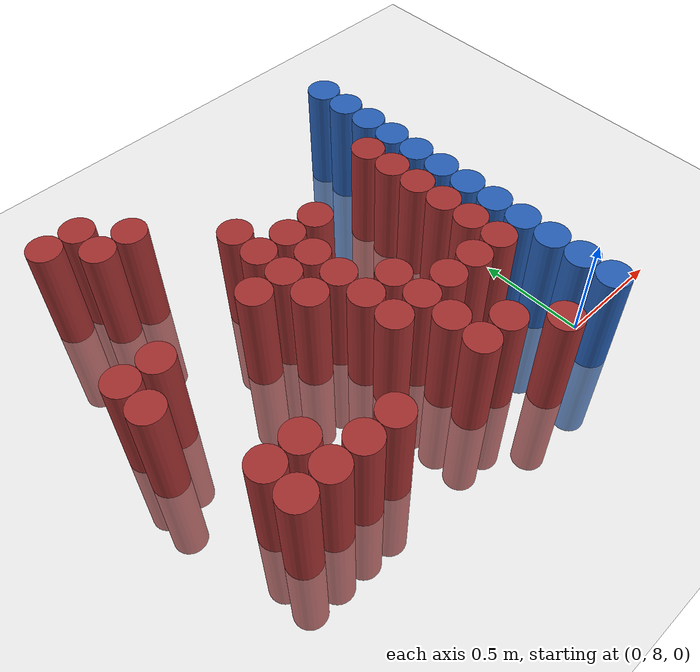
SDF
<sdf version="1.6">
 <world name="default">
  <model name="ground_plane">
   <static>1</static>
   <link name="link">
    <collision name="collision">
     <geometry><plane><normal>0 0 1</normal><size>100 100</size></plane></geometry>
     <surface><friction><ode><mu>100</mu><mu2>50</mu2></ode></friction></surface>
    </collision>
    <visual name="visual">
     <cast_shadows>0</cast_shadows>
     <geometry><plane><normal>0 0 1</normal><size>100 100</size></plane></geometry>
     <material>
      <script><uri>file://media/materials/scripts/gazebo.material</uri><name>Gazebo/Grey</name></script>
     </material>
    </visual>
   </link>
  </model>
  <model name="unit_cylinder_225">
   <static>1</static>
   <pose>-1.725000 8.625000 0.000000 0.000000 0.000000 0.000000</pose>
   <link name="link">
    <inertial>
     <mass>1</mass>
     <inertia><ixx>0.145833</ixx><ixy>0</ixy><ixz>0</ixz><iyy>0.145833</iyy><iyz>0</iyz><izz>0.125</izz></inertia>
    </inertial>
    <collision name="collision">
     <geometry><cylinder><radius>0.075000</radius><length>1</length></cylinder></geometry>
    </collision>
    <visual name="visual">
     <geometry><cylinder><radius>0.075000</radius><length>1</length></cylinder></geometry>
     <material>
      <ambient>0.648000 0.192000 0.192000 1</ambient>
      <diffuse>0.648000 0.192000 0.192000 1</diffuse>
     </material>
     <material>
      <script><name>Gazebo/Grey</name><uri>file://media/materials/scripts/gazebo.material</uri></script>
     </material>
    </visual>
   </link>
  </model>
  <model name="unit_cylinder_226">
   <static>1</static>
   <pose>-1.725000 8.775000 0.000000 0.000000 0.000000 0.000000</pose>
   <link name="link">
    <inertial>
     <mass>1</mass>
     <inertia><ixx>0.145833</ixx><ixy>0</ixy><ixz>0</ixz><iyy>0.145833</iyy><iyz>0</iyz><izz>0.125</izz></inertia>
    </inertial>
    <collision name="collision">
     <geometry><cylinder><radius>0.075000</radius><length>1</length></cylinder></geometry>
    </collision>
    <visual name="visual">
     <geometry><cylinder><radius>0.075000</radius><length>1</length></cylinder></geometry>
     <material>
      <ambient>0.648000 0.192000 0.192000 1</ambient>
      <diffuse>0.648000 0.192000 0.192000 1</diffuse>
     </material>
     <material>
      <script><name>Gazebo/Grey</name><uri>file://media/materials/scripts/gazebo.material</uri></script>
     </material>
    </visual>
   </link>
  </model>
  <model name="unit_cylinder_230">
   <static>1</static>
   <pose>-1.575000 8.025000 0.000000 0.000000 0.000000 0.000000</pose>
   <link name="link">
    <inertial>
     <mass>1</mass>
     <inertia><ixx>0.145833</ixx><ixy>0</ixy><ixz>0</ixz><iyy>0.145833</iyy><iyz>0</iyz><izz>0.125</izz></inertia>
    </inertial>
    <collision name="collision">
     <geometry><cylinder><radius>0.075000</radius><length>1</length></cylinder></geometry>
    </collision>
    <visual name="visual">
     <geometry><cylinder><radius>0.075000</radius><length>1</length></cylinder></geometry>
     <material>
      <ambient>0.648000 0.192000 0.192000 1</ambient>
      <diffuse>0.648000 0.192000 0.192000 1</diffuse>
     </material>
     <material>
      <script><name>Gazebo/Grey</name><uri>file://media/materials/scripts/gazebo.material</uri></script>
     </material>
    </visual>
   </link>
  </model>
  <model name="unit_cylinder_231">
   <static>1</static>
   <pose>-1.575000 8.175000 0.000000 0.000000 0.000000 0.000000</pose>
   <link name="link">
    <inertial>
     <mass>1</mass>
     <inertia><ixx>0.145833</ixx><ixy>0</ixy><ixz>0</ixz><iyy>0.145833</iyy><iyz>0</iyz><izz>0.125</izz></inertia>
    </inertial>
    <collision name="collision">
     <geometry><cylinder><radius>0.075000</radius><length>1</length></cylinder></geometry>
    </collision>
    <visual name="visual">
     <geometry><cylinder><radius>0.075000</radius><length>1</length></cylinder></geometry>
     <material>
      <ambient>0.648000 0.192000 0.192000 1</ambient>
      <diffuse>0.648000 0.192000 0.192000 1</diffuse>
     </material>
     <material>
      <script><name>Gazebo/Grey</name><uri>file://media/materials/scripts/gazebo.material</uri></script>
     </material>
    </visual>
   </link>
  </model>
  <model name="unit_cylinder_232">
   <static>1</static>
   <pose>-1.575000 8.775000 0.000000 0.000000 0.000000 0.000000</pose>
   <link name="link">
    <inertial>
     <mass>1</mass>
     <inertia><ixx>0.145833</ixx><ixy>0</ixy><ixz>0</ixz><iyy>0.145833</iyy><iyz>0</iyz><izz>0.125</izz></inertia>
    </inertial>
    <collision name="collision">
     <geometry><cylinder><radius>0.075000</radius><length>1</length></cylinder></geometry>
    </collision>
    <visual name="visual">
     <geometry><cylinder><radius>0.075000</radius><length>1</length></cylinder></geometry>
     <material>
      <ambient>0.648000 0.192000 0.192000 1</ambient>
      <diffuse>0.648000 0.192000 0.192000 1</diffuse>
     </material>
     <material>
      <script><name>Gazebo/Grey</name><uri>file://media/materials/scripts/gazebo.material</uri></script>
     </material>
    </visual>
   </link>
  </model>
  <model name="unit_cylinder_233">
   <static>1</static>
   <pose>-1.575000 9.525000 0.000000 0.000000 0.000000 0.000000</pose>
   <link name="link">
    <inertial>
     <mass>1</mass>
     <inertia><ixx>0.145833</ixx><ixy>0</ixy><ixz>0</ixz><iyy>0.145833</iyy><iyz>0</iyz><izz>0.125</izz></inertia>
    </inertial>
    <collision name="collision">
     <geometry><cylinder><radius>0.075000</radius><length>1</length></cylinder></geometry>
    </collision>
    <visual name="visual">
     <geometry><cylinder><radius>0.075000</radius><length>1</length></cylinder></geometry>
     <material>
      <ambient>0.648000 0.192000 0.192000 1</ambient>
      <diffuse>0.648000 0.192000 0.192000 1</diffuse>
     </material>
     <material>
      <script><name>Gazebo/Grey</name><uri>file://media/materials/scripts/gazebo.material</uri></script>
     </material>
    </visual>
   </link>
  </model>
  <model name="unit_cylinder_240">
   <static>1</static>
   <pose>-1.425000 8.025000 0.000000 0.000000 0.000000 0.000000</pose>
   <link name="link">
    <inertial>
     <mass>1</mass>
     <inertia><ixx>0.145833</ixx><ixy>0</ixy><ixz>0</ixz><iyy>0.145833</iyy><iyz>0</iyz><izz>0.125</izz></inertia>
    </inertial>
    <collision name="collision">
     <geometry><cylinder><radius>0.075000</radius><length>1</length></cylinder></geometry>
    </collision>
    <visual name="visual">
     <geometry><cylinder><radius>0.075000</radius><length>1</length></cylinder></geometry>
     <material>
      <ambient>0.648000 0.192000 0.192000 1</ambient>
      <diffuse>0.648000 0.192000 0.192000 1</diffuse>
     </material>
     <material>
      <script><name>Gazebo/Grey</name><uri>file://media/materials/scripts/gazebo.material</uri></script>
     </material>
    </visual>
   </link>
  </model>
  <model name="unit_cylinder_241">
   <static>1</static>
   <pose>-1.425000 8.175000 0.000000 0.000000 0.000000 0.000000</pose>
   <link name="link">
    <inertial>
     <mass>1</mass>
     <inertia><ixx>0.145833</ixx><ixy>0</ixy><ixz>0</ixz><iyy>0.145833</iyy><iyz>0</iyz><izz>0.125</izz></inertia>
    </inertial>
    <collision name="collision">
     <geometry><cylinder><radius>0.075000</radius><length>1</length></cylinder></geometry>
    </collision>
    <visual name="visual">
     <geometry><cylinder><radius>0.075000</radius><length>1</length></cylinder></geometry>
     <material>
      <ambient>0.648000 0.192000 0.192000 1</ambient>
      <diffuse>0.648000 0.192000 0.192000 1</diffuse>
     </material>
     <material>
      <script><name>Gazebo/Grey</name><uri>file://media/materials/scripts/gazebo.material</uri></script>
     </material>
    </visual>
   </link>
  </model>
  <model name="unit_cylinder_242">
   <static>1</static>
   <pose>-1.425000 9.375000 0.000000 0.000000 0.000000 0.000000</pose>
   <link name="link">
    <inertial>
     <mass>1</mass>
     <inertia><ixx>0.145833</ixx><ixy>0</ixy><ixz>0</ixz><iyy>0.145833</iyy><iyz>0</iyz><izz>0.125</izz></inertia>
    </inertial>
    <collision name="collision">
     <geometry><cylinder><radius>0.075000</radius><length>1</length></cylinder></geometry>
    </collision>
    <visual name="visual">
     <geometry><cylinder><radius>0.075000</radius><length>1</length></cylinder></geometry>
     <material>
      <ambient>0.648000 0.192000 0.192000 1</ambient>
      <diffuse>0.648000 0.192000 0.192000 1</diffuse>
     </material>
     <material>
      <script><name>Gazebo/Grey</name><uri>file://media/materials/scripts/gazebo.material</uri></script>
     </material>
    </visual>
   </link>
  </model>
  <model name="unit_cylinder_243">
   <static>1</static>
   <pose>-1.425000 9.525000 0.000000 0.000000 0.000000 0.000000</pose>
   <link name="link">
    <inertial>
     <mass>1</mass>
     <inertia><ixx>0.145833</ixx><ixy>0</ixy><ixz>0</ixz><iyy>0.145833</iyy><iyz>0</iyz><izz>0.125</izz></inertia>
    </inertial>
    <collision name="collision">
     <geometry><cylinder><radius>0.075000</radius><length>1</length></cylinder></geometry>
    </collision>
    <visual name="visual">
     <geometry><cylinder><radius>0.075000</radius><length>1</length></cylinder></geometry>
     <material>
      <ambient>0.648000 0.192000 0.192000 1</ambient>
      <diffuse>0.648000 0.192000 0.192000 1</diffuse>
     </material>
     <material>
      <script><name>Gazebo/Grey</name><uri>file://media/materials/scripts/gazebo.material</uri></script>
     </material>
    </visual>
   </link>
  </model>
  <model name="unit_cylinder_249">
   <static>1</static>
   <pose>-1.275000 8.025000 0.000000 0.000000 0.000000 0.000000</pose>
   <link name="link">
    <inertial>
     <mass>1</mass>
     <inertia><ixx>0.145833</ixx><ixy>0</ixy><ixz>0</ixz><iyy>0.145833</iyy><iyz>0</iyz><izz>0.125</izz></inertia>
    </inertial>
    <collision name="collision">
     <geometry><cylinder><radius>0.075000</radius><length>1</length></cylinder></geometry>
    </collision>
    <visual name="visual">
     <geometry><cylinder><radius>0.075000</radius><length>1</length></cylinder></geometry>
     <material>
      <ambient>0.648000 0.192000 0.192000 1</ambient>
      <diffuse>0.648000 0.192000 0.192000 1</diffuse>
     </material>
     <material>
      <script><name>Gazebo/Grey</name><uri>file://media/materials/scripts/gazebo.material</uri></script>
     </material>
    </visual>
   </link>
  </model>
  <model name="unit_cylinder_250">
   <static>1</static>
   <pose>-1.275000 9.375000 0.000000 0.000000 0.000000 0.000000</pose>
   <link name="link">
    <inertial>
     <mass>1</mass>
     <inertia><ixx>0.145833</ixx><ixy>0</ixy><ixz>0</ixz><iyy>0.145833</iyy><iyz>0</iyz><izz>0.125</izz></inertia>
    </inertial>
    <collision name="collision">
     <geometry><cylinder><radius>0.075000</radius><length>1</length></cylinder></geometry>
    </collision>
    <visual name="visual">
     <geometry><cylinder><radius>0.075000</radius><length>1</length></cylinder></geometry>
     <material>
      <ambient>0.648000 0.192000 0.192000 1</ambient>
      <diffuse>0.648000 0.192000 0.192000 1</diffuse>
     </material>
     <material>
      <script><name>Gazebo/Grey</name><uri>file://media/materials/scripts/gazebo.material</uri></script>
     </material>
    </visual>
   </link>
  </model>
  <model name="unit_cylinder_254">
   <static>1</static>
   <pose>-1.125000 8.025000 0.000000 0.000000 0.000000 0.000000</pose>
   <link name="link">
    <inertial>
     <mass>1</mass>
     <inertia><ixx>0.145833</ixx><ixy>0</ixy><ixz>0</ixz><iyy>0.145833</iyy><iyz>0</iyz><izz>0.125</izz></inertia>
    </inertial>
    <collision name="collision">
     <geometry><cylinder><radius>0.075000</radius><length>1</length></cylinder></geometry>
    </collision>
    <visual name="visual">
     <geometry><cylinder><radius>0.075000</radius><length>1</length></cylinder></geometry>
     <material>
      <ambient>0.648000 0.192000 0.192000 1</ambient>
      <diffuse>0.648000 0.192000 0.192000 1</diffuse>
     </material>
     <material>
      <script><name>Gazebo/Grey</name><uri>file://media/materials/scripts/gazebo.material</uri></script>
     </material>
    </visual>
   </link>
  </model>
  <model name="unit_cylinder_255">
   <static>1</static>
   <pose>-1.125000 8.775000 0.000000 0.000000 0.000000 0.000000</pose>
   <link name="link">
    <inertial>
     <mass>1</mass>
     <inertia><ixx>0.145833</ixx><ixy>0</ixy><ixz>0</ixz><iyy>0.145833</iyy><iyz>0</iyz><izz>0.125</izz></inertia>
    </inertial>
    <collision name="collision">
     <geometry><cylinder><radius>0.075000</radius><length>1</length></cylinder></geometry>
    </collision>
    <visual name="visual">
     <geometry><cylinder><radius>0.075000</radius><length>1</length></cylinder></geometry>
     <material>
      <ambient>0.648000 0.192000 0.192000 1</ambient>
      <diffuse>0.648000 0.192000 0.192000 1</diffuse>
     </material>
     <material>
      <script><name>Gazebo/Grey</name><uri>file://media/materials/scripts/gazebo.material</uri></script>
     </material>
    </visual>
   </link>
  </model>
  <model name="unit_cylinder_262">
   <static>1</static>
   <pose>-0.975000 8.625000 0.000000 0.000000 0.000000 0.000000</pose>
   <link name="link">
    <inertial>
     <mass>1</mass>
     <inertia><ixx>0.145833</ixx><ixy>0</ixy><ixz>0</ixz><iyy>0.145833</iyy><iyz>0</iyz><izz>0.125</izz></inertia>
    </inertial>
    <collision name="collision">
     <geometry><cylinder><radius>0.075000</radius><length>1</length></cylinder></geometry>
    </collision>
    <visual name="visual">
     <geometry><cylinder><radius>0.075000</radius><length>1</length></cylinder></geometry>
     <material>
      <ambient>0.648000 0.192000 0.192000 1</ambient>
      <diffuse>0.648000 0.192000 0.192000 1</diffuse>
     </material>
     <material>
      <script><name>Gazebo/Grey</name><uri>file://media/materials/scripts/gazebo.material</uri></script>
     </material>
    </visual>
   </link>
  </model>
  <model name="unit_cylinder_263">
   <static>1</static>
   <pose>-0.975000 8.775000 0.000000 0.000000 0.000000 0.000000</pose>
   <link name="link">
    <inertial>
     <mass>1</mass>
     <inertia><ixx>0.145833</ixx><ixy>0</ixy><ixz>0</ixz><iyy>0.145833</iyy><iyz>0</iyz><izz>0.125</izz></inertia>
    </inertial>
    <collision name="collision">
     <geometry><cylinder><radius>0.075000</radius><length>1</length></cylinder></geometry>
    </collision>
    <visual name="visual">
     <geometry><cylinder><radius>0.075000</radius><length>1</length></cylinder></geometry>
     <material>
      <ambient>0.648000 0.192000 0.192000 1</ambient>
      <diffuse>0.648000 0.192000 0.192000 1</diffuse>
     </material>
     <material>
      <script><name>Gazebo/Grey</name><uri>file://media/materials/scripts/gazebo.material</uri></script>
     </material>
    </visual>
   </link>
  </model>
  <model name="unit_cylinder_264">
   <static>1</static>
   <pose>-0.975000 8.925000 0.000000 0.000000 0.000000 0.000000</pose>
   <link name="link">
    <inertial>
     <mass>1</mass>
     <inertia><ixx>0.145833</ixx><ixy>0</ixy><ixz>0</ixz><iyy>0.145833</iyy><iyz>0</iyz><izz>0.125</izz></inertia>
    </inertial>
    <collision name="collision">
     <geometry><cylinder><radius>0.075000</radius><length>1</length></cylinder></geometry>
    </collision>
    <visual name="visual">
     <geometry><cylinder><radius>0.075000</radius><length>1</length></cylinder></geometry>
     <material>
      <ambient>0.648000 0.192000 0.192000 1</ambient>
      <diffuse>0.648000 0.192000 0.192000 1</diffuse>
     </material>
     <material>
      <script><name>Gazebo/Grey</name><uri>file://media/materials/scripts/gazebo.material</uri></script>
     </material>
    </visual>
   </link>
  </model>
  <model name="unit_cylinder_265">
   <static>1</static>
   <pose>-0.975000 9.075000 0.000000 0.000000 0.000000 0.000000</pose>
   <link name="link">
    <inertial>
     <mass>1</mass>
     <inertia><ixx>0.145833</ixx><ixy>0</ixy><ixz>0</ixz><iyy>0.145833</iyy><iyz>0</iyz><izz>0.125</izz></inertia>
    </inertial>
    <collision name="collision">
     <geometry><cylinder><radius>0.075000</radius><length>1</length></cylinder></geometry>
    </collision>
    <visual name="visual">
     <geometry><cylinder><radius>0.075000</radius><length>1</length></cylinder></geometry>
     <material>
      <ambient>0.648000 0.192000 0.192000 1</ambient>
      <diffuse>0.648000 0.192000 0.192000 1</diffuse>
     </material>
     <material>
      <script><name>Gazebo/Grey</name><uri>file://media/materials/scripts/gazebo.material</uri></script>
     </material>
    </visual>
   </link>
  </model>
  <model name="unit_cylinder_273">
   <static>1</static>
   <pose>-0.825000 8.325000 0.000000 0.000000 0.000000 0.000000</pose>
   <link name="link">
    <inertial>
     <mass>1</mass>
     <inertia><ixx>0.145833</ixx><ixy>0</ixy><ixz>0</ixz><iyy>0.145833</iyy><iyz>0</iyz><izz>0.125</izz></inertia>
    </inertial>
    <collision name="collision">
     <geometry><cylinder><radius>0.075000</radius><length>1</length></cylinder></geometry>
    </collision>
    <visual name="visual">
     <geometry><cylinder><radius>0.075000</radius><length>1</length></cylinder></geometry>
     <material>
      <ambient>0.648000 0.192000 0.192000 1</ambient>
      <diffuse>0.648000 0.192000 0.192000 1</diffuse>
     </material>
     <material>
      <script><name>Gazebo/Grey</name><uri>file://media/materials/scripts/gazebo.material</uri></script>
     </material>
    </visual>
   </link>
  </model>
  <model name="unit_cylinder_274">
   <static>1</static>
   <pose>-0.825000 8.475000 0.000000 0.000000 0.000000 0.000000</pose>
   <link name="link">
    <inertial>
     <mass>1</mass>
     <inertia><ixx>0.145833</ixx><ixy>0</ixy><ixz>0</ixz><iyy>0.145833</iyy><iyz>0</iyz><izz>0.125</izz></inertia>
    </inertial>
    <collision name="collision">
     <geometry><cylinder><radius>0.075000</radius><length>1</length></cylinder></geometry>
    </collision>
    <visual name="visual">
     <geometry><cylinder><radius>0.075000</radius><length>1</length></cylinder></geometry>
     <material>
      <ambient>0.648000 0.192000 0.192000 1</ambient>
      <diffuse>0.648000 0.192000 0.192000 1</diffuse>
     </material>
     <material>
      <script><name>Gazebo/Grey</name><uri>file://media/materials/scripts/gazebo.material</uri></script>
     </material>
    </visual>
   </link>
  </model>
  <model name="unit_cylinder_275">
   <static>1</static>
   <pose>-0.825000 8.625000 0.000000 0.000000 0.000000 0.000000</pose>
   <link name="link">
    <inertial>
     <mass>1</mass>
     <inertia><ixx>0.145833</ixx><ixy>0</ixy><ixz>0</ixz><iyy>0.145833</iyy><iyz>0</iyz><izz>0.125</izz></inertia>
    </inertial>
    <collision name="collision">
     <geometry><cylinder><radius>0.075000</radius><length>1</length></cylinder></geometry>
    </collision>
    <visual name="visual">
     <geometry><cylinder><radius>0.075000</radius><length>1</length></cylinder></geometry>
     <material>
      <ambient>0.648000 0.192000 0.192000 1</ambient>
      <diffuse>0.648000 0.192000 0.192000 1</diffuse>
     </material>
     <material>
      <script><name>Gazebo/Grey</name><uri>file://media/materials/scripts/gazebo.material</uri></script>
     </material>
    </visual>
   </link>
  </model>
  <model name="unit_cylinder_276">
   <static>1</static>
   <pose>-0.825000 8.775000 0.000000 0.000000 0.000000 0.000000</pose>
   <link name="link">
    <inertial>
     <mass>1</mass>
     <inertia><ixx>0.145833</ixx><ixy>0</ixy><ixz>0</ixz><iyy>0.145833</iyy><iyz>0</iyz><izz>0.125</izz></inertia>
    </inertial>
    <collision name="collision">
     <geometry><cylinder><radius>0.075000</radius><length>1</length></cylinder></geometry>
    </collision>
    <visual name="visual">
     <geometry><cylinder><radius>0.075000</radius><length>1</length></cylinder></geometry>
     <material>
      <ambient>0.648000 0.192000 0.192000 1</ambient>
      <diffuse>0.648000 0.192000 0.192000 1</diffuse>
     </material>
     <material>
      <script><name>Gazebo/Grey</name><uri>file://media/materials/scripts/gazebo.material</uri></script>
     </material>
    </visual>
   </link>
  </model>
  <model name="unit_cylinder_277">
   <static>1</static>
   <pose>-0.825000 8.925000 0.000000 0.000000 0.000000 0.000000</pose>
   <link name="link">
    <inertial>
     <mass>1</mass>
     <inertia><ixx>0.145833</ixx><ixy>0</ixy><ixz>0</ixz><iyy>0.145833</iyy><iyz>0</iyz><izz>0.125</izz></inertia>
    </inertial>
    <collision name="collision">
     <geometry><cylinder><radius>0.075000</radius><length>1</length></cylinder></geometry>
    </collision>
    <visual name="visual">
     <geometry><cylinder><radius>0.075000</radius><length>1</length></cylinder></geometry>
     <material>
      <ambient>0.648000 0.192000 0.192000 1</ambient>
      <diffuse>0.648000 0.192000 0.192000 1</diffuse>
     </material>
     <material>
      <script><name>Gazebo/Grey</name><uri>file://media/materials/scripts/gazebo.material</uri></script>
     </material>
    </visual>
   </link>
  </model>
  <model name="unit_cylinder_285">
   <static>1</static>
   <pose>-0.675000 8.025000 0.000000 0.000000 0.000000 0.000000</pose>
   <link name="link">
    <inertial>
     <mass>1</mass>
     <inertia><ixx>0.145833</ixx><ixy>0</ixy><ixz>0</ixz><iyy>0.145833</iyy><iyz>0</iyz><izz>0.125</izz></inertia>
    </inertial>
    <collision name="collision">
     <geometry><cylinder><radius>0.075000</radius><length>1</length></cylinder></geometry>
    </collision>
    <visual name="visual">
     <geometry><cylinder><radius>0.075000</radius><length>1</length></cylinder></geometry>
     <material>
      <ambient>0.648000 0.192000 0.192000 1</ambient>
      <diffuse>0.648000 0.192000 0.192000 1</diffuse>
     </material>
     <material>
      <script><name>Gazebo/Grey</name><uri>file://media/materials/scripts/gazebo.material</uri></script>
     </material>
    </visual>
   </link>
  </model>
  <model name="unit_cylinder_286">
   <static>1</static>
   <pose>-0.675000 8.175000 0.000000 0.000000 0.000000 0.000000</pose>
   <link name="link">
    <inertial>
     <mass>1</mass>
     <inertia><ixx>0.145833</ixx><ixy>0</ixy><ixz>0</ixz><iyy>0.145833</iyy><iyz>0</iyz><izz>0.125</izz></inertia>
    </inertial>
    <collision name="collision">
     <geometry><cylinder><radius>0.075000</radius><length>1</length></cylinder></geometry>
    </collision>
    <visual name="visual">
     <geometry><cylinder><radius>0.075000</radius><length>1</length></cylinder></geometry>
     <material>
      <ambient>0.648000 0.192000 0.192000 1</ambient>
      <diffuse>0.648000 0.192000 0.192000 1</diffuse>
     </material>
     <material>
      <script><name>Gazebo/Grey</name><uri>file://media/materials/scripts/gazebo.material</uri></script>
     </material>
    </visual>
   </link>
  </model>
  <model name="unit_cylinder_287">
   <static>1</static>
   <pose>-0.675000 8.325000 0.000000 0.000000 0.000000 0.000000</pose>
   <link name="link">
    <inertial>
     <mass>1</mass>
     <inertia><ixx>0.145833</ixx><ixy>0</ixy><ixz>0</ixz><iyy>0.145833</iyy><iyz>0</iyz><izz>0.125</izz></inertia>
    </inertial>
    <collision name="collision">
     <geometry><cylinder><radius>0.075000</radius><length>1</length></cylinder></geometry>
    </collision>
    <visual name="visual">
     <geometry><cylinder><radius>0.075000</radius><length>1</length></cylinder></geometry>
     <material>
      <ambient>0.648000 0.192000 0.192000 1</ambient>
      <diffuse>0.648000 0.192000 0.192000 1</diffuse>
     </material>
     <material>
      <script><name>Gazebo/Grey</name><uri>file://media/materials/scripts/gazebo.material</uri></script>
     </material>
    </visual>
   </link>
  </model>
  <model name="unit_cylinder_288">
   <static>1</static>
   <pose>-0.675000 8.475000 0.000000 0.000000 0.000000 0.000000</pose>
   <link name="link">
    <inertial>
     <mass>1</mass>
     <inertia><ixx>0.145833</ixx><ixy>0</ixy><ixz>0</ixz><iyy>0.145833</iyy><iyz>0</iyz><izz>0.125</izz></inertia>
    </inertial>
    <collision name="collision">
     <geometry><cylinder><radius>0.075000</radius><length>1</length></cylinder></geometry>
    </collision>
    <visual name="visual">
     <geometry><cylinder><radius>0.075000</radius><length>1</length></cylinder></geometry>
     <material>
      <ambient>0.648000 0.192000 0.192000 1</ambient>
      <diffuse>0.648000 0.192000 0.192000 1</diffuse>
     </material>
     <material>
      <script><name>Gazebo/Grey</name><uri>file://media/materials/scripts/gazebo.material</uri></script>
     </material>
    </visual>
   </link>
  </model>
  <model name="unit_cylinder_289">
   <static>1</static>
   <pose>-0.675000 8.925000 0.000000 0.000000 0.000000 0.000000</pose>
   <link name="link">
    <inertial>
     <mass>1</mass>
     <inertia><ixx>0.145833</ixx><ixy>0</ixy><ixz>0</ixz><iyy>0.145833</iyy><iyz>0</iyz><izz>0.125</izz></inertia>
    </inertial>
    <collision name="collision">
     <geometry><cylinder><radius>0.075000</radius><length>1</length></cylinder></geometry>
    </collision>
    <visual name="visual">
     <geometry><cylinder><radius>0.075000</radius><length>1</length></cylinder></geometry>
     <material>
      <ambient>0.648000 0.192000 0.192000 1</ambient>
      <diffuse>0.648000 0.192000 0.192000 1</diffuse>
     </material>
     <material>
      <script><name>Gazebo/Grey</name><uri>file://media/materials/scripts/gazebo.material</uri></script>
     </material>
    </visual>
   </link>
  </model>
  <model name="unit_cylinder_295">
   <static>1</static>
   <pose>-0.525000 8.025000 0.000000 0.000000 0.000000 0.000000</pose>
   <link name="link">
    <inertial>
     <mass>1</mass>
     <inertia><ixx>0.145833</ixx><ixy>0</ixy><ixz>0</ixz><iyy>0.145833</iyy><iyz>0</iyz><izz>0.125</izz></inertia>
    </inertial>
    <collision name="collision">
     <geometry><cylinder><radius>0.075000</radius><length>1</length></cylinder></geometry>
    </collision>
    <visual name="visual">
     <geometry><cylinder><radius>0.075000</radius><length>1</length></cylinder></geometry>
     <material>
      <ambient>0.648000 0.192000 0.192000 1</ambient>
      <diffuse>0.648000 0.192000 0.192000 1</diffuse>
     </material>
     <material>
      <script><name>Gazebo/Grey</name><uri>file://media/materials/scripts/gazebo.material</uri></script>
     </material>
    </visual>
   </link>
  </model>
  <model name="unit_cylinder_296">
   <static>1</static>
   <pose>-0.525000 8.325000 0.000000 0.000000 0.000000 0.000000</pose>
   <link name="link">
    <inertial>
     <mass>1</mass>
     <inertia><ixx>0.145833</ixx><ixy>0</ixy><ixz>0</ixz><iyy>0.145833</iyy><iyz>0</iyz><izz>0.125</izz></inertia>
    </inertial>
    <collision name="collision">
     <geometry><cylinder><radius>0.075000</radius><length>1</length></cylinder></geometry>
    </collision>
    <visual name="visual">
     <geometry><cylinder><radius>0.075000</radius><length>1</length></cylinder></geometry>
     <material>
      <ambient>0.648000 0.192000 0.192000 1</ambient>
      <diffuse>0.648000 0.192000 0.192000 1</diffuse>
     </material>
     <material>
      <script><name>Gazebo/Grey</name><uri>file://media/materials/scripts/gazebo.material</uri></script>
     </material>
    </visual>
   </link>
  </model>
  <model name="unit_cylinder_301">
   <static>1</static>
   <pose>-0.375000 7.875000 0.000000 0.000000 0.000000 0.000000</pose>
   <link name="link">
    <inertial>
     <mass>1</mass>
     <inertia><ixx>0.145833</ixx><ixy>0</ixy><ixz>0</ixz><iyy>0.145833</iyy><iyz>0</iyz><izz>0.125</izz></inertia>
    </inertial>
    <collision name="collision">
     <geometry><cylinder><radius>0.075000</radius><length>1</length></cylinder></geometry>
    </collision>
    <visual name="visual">
     <geometry><cylinder><radius>0.075000</radius><length>1</length></cylinder></geometry>
     <material>
      <ambient>0.648000 0.192000 0.192000 1</ambient>
      <diffuse>0.648000 0.192000 0.192000 1</diffuse>
     </material>
     <material>
      <script><name>Gazebo/Grey</name><uri>file://media/materials/scripts/gazebo.material</uri></script>
     </material>
    </visual>
   </link>
  </model>
  <model name="unit_cylinder_302">
   <static>1</static>
   <pose>-0.375000 8.325000 0.000000 0.000000 0.000000 0.000000</pose>
   <link name="link">
    <inertial>
     <mass>1</mass>
     <inertia><ixx>0.145833</ixx><ixy>0</ixy><ixz>0</ixz><iyy>0.145833</iyy><iyz>0</iyz><izz>0.125</izz></inertia>
    </inertial>
    <collision name="collision">
     <geometry><cylinder><radius>0.075000</radius><length>1</length></cylinder></geometry>
    </collision>
    <visual name="visual">
     <geometry><cylinder><radius>0.075000</radius><length>1</length></cylinder></geometry>
     <material>
      <ambient>0.648000 0.192000 0.192000 1</ambient>
      <diffuse>0.648000 0.192000 0.192000 1</diffuse>
     </material>
     <material>
      <script><name>Gazebo/Grey</name><uri>file://media/materials/scripts/gazebo.material</uri></script>
     </material>
    </visual>
   </link>
  </model>
  <model name="unit_cylinder_311">
   <static>1</static>
   <pose>-0.225000 8.325000 0.000000 0.000000 0.000000 0.000000</pose>
   <link name="link">
    <inertial>
     <mass>1</mass>
     <inertia><ixx>0.145833</ixx><ixy>0</ixy><ixz>0</ixz><iyy>0.145833</iyy><iyz>0</iyz><izz>0.125</izz></inertia>
    </inertial>
    <collision name="collision">
     <geometry><cylinder><radius>0.075000</radius><length>1</length></cylinder></geometry>
    </collision>
    <visual name="visual">
     <geometry><cylinder><radius>0.075000</radius><length>1</length></cylinder></geometry>
     <material>
      <ambient>0.648000 0.192000 0.192000 1</ambient>
      <diffuse>0.648000 0.192000 0.192000 1</diffuse>
     </material>
     <material>
      <script><name>Gazebo/Grey</name><uri>file://media/materials/scripts/gazebo.material</uri></script>
     </material>
    </visual>
   </link>
  </model>
  <model name="unit_cylinder_312">
   <static>1</static>
   <pose>-0.225000 8.475000 0.000000 0.000000 0.000000 0.000000</pose>
   <link name="link">
    <inertial>
     <mass>1</mass>
     <inertia><ixx>0.145833</ixx><ixy>0</ixy><ixz>0</ixz><iyy>0.145833</iyy><iyz>0</iyz><izz>0.125</izz></inertia>
    </inertial>
    <collision name="collision">
     <geometry><cylinder><radius>0.075000</radius><length>1</length></cylinder></geometry>
    </collision>
    <visual name="visual">
     <geometry><cylinder><radius>0.075000</radius><length>1</length></cylinder></geometry>
     <material>
      <ambient>0.648000 0.192000 0.192000 1</ambient>
      <diffuse>0.648000 0.192000 0.192000 1</diffuse>
     </material>
     <material>
      <script><name>Gazebo/Grey</name><uri>file://media/materials/scripts/gazebo.material</uri></script>
     </material>
    </visual>
   </link>
  </model>
  <model name="unit_cylinder_313">
   <static>1</static>
   <pose>-0.225000 8.625000 0.000000 0.000000 0.000000 0.000000</pose>
   <link name="link">
    <inertial>
     <mass>1</mass>
     <inertia><ixx>0.145833</ixx><ixy>0</ixy><ixz>0</ixz><iyy>0.145833</iyy><iyz>0</iyz><izz>0.125</izz></inertia>
    </inertial>
    <collision name="collision">
     <geometry><cylinder><radius>0.075000</radius><length>1</length></cylinder></geometry>
    </collision>
    <visual name="visual">
     <geometry><cylinder><radius>0.075000</radius><length>1</length></cylinder></geometry>
     <material>
      <ambient>0.648000 0.192000 0.192000 1</ambient>
      <diffuse>0.648000 0.192000 0.192000 1</diffuse>
     </material>
     <material>
      <script><name>Gazebo/Grey</name><uri>file://media/materials/scripts/gazebo.material</uri></script>
     </material>
    </visual>
   </link>
  </model>
  <model name="unit_cylinder_314">
   <static>1</static>
   <pose>-0.225000 8.775000 0.000000 0.000000 0.000000 0.000000</pose>
   <link name="link">
    <inertial>
     <mass>1</mass>
     <inertia><ixx>0.145833</ixx><ixy>0</ixy><ixz>0</ixz><iyy>0.145833</iyy><iyz>0</iyz><izz>0.125</izz></inertia>
    </inertial>
    <collision name="collision">
     <geometry><cylinder><radius>0.075000</radius><length>1</length></cylinder></geometry>
    </collision>
    <visual name="visual">
     <geometry><cylinder><radius>0.075000</radius><length>1</length></cylinder></geometry>
     <material>
      <ambient>0.648000 0.192000 0.192000 1</ambient>
      <diffuse>0.648000 0.192000 0.192000 1</diffuse>
     </material>
     <material>
      <script><name>Gazebo/Grey</name><uri>file://media/materials/scripts/gazebo.material</uri></script>
     </material>
    </visual>
   </link>
  </model>
  <model name="unit_cylinder_315">
   <static>1</static>
   <pose>-0.225000 8.925000 0.000000 0.000000 0.000000 0.000000</pose>
   <link name="link">
    <inertial>
     <mass>1</mass>
     <inertia><ixx>0.145833</ixx><ixy>0</ixy><ixz>0</ixz><iyy>0.145833</iyy><iyz>0</iyz><izz>0.125</izz></inertia>
    </inertial>
    <collision name="collision">
     <geometry><cylinder><radius>0.075000</radius><length>1</length></cylinder></geometry>
    </collision>
    <visual name="visual">
     <geometry><cylinder><radius>0.075000</radius><length>1</length></cylinder></geometry>
     <material>
      <ambient>0.648000 0.192000 0.192000 1</ambient>
      <diffuse>0.648000 0.192000 0.192000 1</diffuse>
     </material>
     <material>
      <script><name>Gazebo/Grey</name><uri>file://media/materials/scripts/gazebo.material</uri></script>
     </material>
    </visual>
   </link>
  </model>
  <model name="unit_cylinder_316">
   <static>1</static>
   <pose>-0.225000 9.075000 0.000000 0.000000 0.000000 0.000000</pose>
   <link name="link">
    <inertial>
     <mass>1</mass>
     <inertia><ixx>0.145833</ixx><ixy>0</ixy><ixz>0</ixz><iyy>0.145833</iyy><iyz>0</iyz><izz>0.125</izz></inertia>
    </inertial>
    <collision name="collision">
     <geometry><cylinder><radius>0.075000</radius><length>1</length></cylinder></geometry>
    </collision>
    <visual name="visual">
     <geometry><cylinder><radius>0.075000</radius><length>1</length></cylinder></geometry>
     <material>
      <ambient>0.648000 0.192000 0.192000 1</ambient>
      <diffuse>0.648000 0.192000 0.192000 1</diffuse>
     </material>
     <material>
      <script><name>Gazebo/Grey</name><uri>file://media/materials/scripts/gazebo.material</uri></script>
     </material>
    </visual>
   </link>
  </model>
  <model name="unit_cylinder_335">
   <static>1</static>
   <pose>-0.075000 7.875000 0.000000 0.000000 0.000000 0.000000</pose>
   <link name="link">
    <inertial>
     <mass>1</mass>
     <inertia><ixx>0.145833</ixx><ixy>0</ixy><ixz>0</ixz><iyy>0.145833</iyy><iyz>0</iyz><izz>0.125</izz></inertia>
    </inertial>
    <collision name="collision">
     <geometry><cylinder><radius>0.075000</radius><length>1</length></cylinder></geometry>
    </collision>
    <visual name="visual">
     <geometry><cylinder><radius>0.075000</radius><length>1</length></cylinder></geometry>
     <material>
      <ambient>0.152000 0.379000 0.720000 1</ambient>
      <diffuse>0.152000 0.379000 0.720000 1</diffuse>
     </material>
     <material>
      <script><name>Gazebo/Grey</name><uri>file://media/materials/scripts/gazebo.material</uri></script>
     </material>
    </visual>
   </link>
  </model>
  <model name="unit_cylinder_336">
   <static>1</static>
   <pose>-0.075000 8.025000 0.000000 0.000000 0.000000 0.000000</pose>
   <link name="link">
    <inertial>
     <mass>1</mass>
     <inertia><ixx>0.145833</ixx><ixy>0</ixy><ixz>0</ixz><iyy>0.145833</iyy><iyz>0</iyz><izz>0.125</izz></inertia>
    </inertial>
    <collision name="collision">
     <geometry><cylinder><radius>0.075000</radius><length>1</length></cylinder></geometry>
    </collision>
    <visual name="visual">
     <geometry><cylinder><radius>0.075000</radius><length>1</length></cylinder></geometry>
     <material>
      <ambient>0.152000 0.379000 0.720000 1</ambient>
      <diffuse>0.152000 0.379000 0.720000 1</diffuse>
     </material>
     <material>
      <script><name>Gazebo/Grey</name><uri>file://media/materials/scripts/gazebo.material</uri></script>
     </material>
    </visual>
   </link>
  </model>
  <model name="unit_cylinder_337">
   <static>1</static>
   <pose>-0.075000 8.175000 0.000000 0.000000 0.000000 0.000000</pose>
   <link name="link">
    <inertial>
     <mass>1</mass>
     <inertia><ixx>0.145833</ixx><ixy>0</ixy><ixz>0</ixz><iyy>0.145833</iyy><iyz>0</iyz><izz>0.125</izz></inertia>
    </inertial>
    <collision name="collision">
     <geometry><cylinder><radius>0.075000</radius><length>1</length></cylinder></geometry>
    </collision>
    <visual name="visual">
     <geometry><cylinder><radius>0.075000</radius><length>1</length></cylinder></geometry>
     <material>
      <ambient>0.152000 0.379000 0.720000 1</ambient>
      <diffuse>0.152000 0.379000 0.720000 1</diffuse>
     </material>
     <material>
      <script><name>Gazebo/Grey</name><uri>file://media/materials/scripts/gazebo.material</uri></script>
     </material>
    </visual>
   </link>
  </model>
  <model name="unit_cylinder_338">
   <static>1</static>
   <pose>-0.075000 8.325000 0.000000 0.000000 0.000000 0.000000</pose>
   <link name="link">
    <inertial>
     <mass>1</mass>
     <inertia><ixx>0.145833</ixx><ixy>0</ixy><ixz>0</ixz><iyy>0.145833</iyy><iyz>0</iyz><izz>0.125</izz></inertia>
    </inertial>
    <collision name="collision">
     <geometry><cylinder><radius>0.075000</radius><length>1</length></cylinder></geometry>
    </collision>
    <visual name="visual">
     <geometry><cylinder><radius>0.075000</radius><length>1</length></cylinder></geometry>
     <material>
      <ambient>0.152000 0.379000 0.720000 1</ambient>
      <diffuse>0.152000 0.379000 0.720000 1</diffuse>
     </material>
     <material>
      <script><name>Gazebo/Grey</name><uri>file://media/materials/scripts/gazebo.material</uri></script>
     </material>
    </visual>
   </link>
  </model>
  <model name="unit_cylinder_339">
   <static>1</static>
   <pose>-0.075000 8.475000 0.000000 0.000000 0.000000 0.000000</pose>
   <link name="link">
    <inertial>
     <mass>1</mass>
     <inertia><ixx>0.145833</ixx><ixy>0</ixy><ixz>0</ixz><iyy>0.145833</iyy><iyz>0</iyz><izz>0.125</izz></inertia>
    </inertial>
    <collision name="collision">
     <geometry><cylinder><radius>0.075000</radius><length>1</length></cylinder></geometry>
    </collision>
    <visual name="visual">
     <geometry><cylinder><radius>0.075000</radius><length>1</length></cylinder></geometry>
     <material>
      <ambient>0.152000 0.379000 0.720000 1</ambient>
      <diffuse>0.152000 0.379000 0.720000 1</diffuse>
     </material>
     <material>
      <script><name>Gazebo/Grey</name><uri>file://media/materials/scripts/gazebo.material</uri></script>
     </material>
    </visual>
   </link>
  </model>
  <model name="unit_cylinder_340">
   <static>1</static>
   <pose>-0.075000 8.625000 0.000000 0.000000 0.000000 0.000000</pose>
   <link name="link">
    <inertial>
     <mass>1</mass>
     <inertia><ixx>0.145833</ixx><ixy>0</ixy><ixz>0</ixz><iyy>0.145833</iyy><iyz>0</iyz><izz>0.125</izz></inertia>
    </inertial>
    <collision name="collision">
     <geometry><cylinder><radius>0.075000</radius><length>1</length></cylinder></geometry>
    </collision>
    <visual name="visual">
     <geometry><cylinder><radius>0.075000</radius><length>1</length></cylinder></geometry>
     <material>
      <ambient>0.152000 0.379000 0.720000 1</ambient>
      <diffuse>0.152000 0.379000 0.720000 1</diffuse>
     </material>
     <material>
      <script><name>Gazebo/Grey</name><uri>file://media/materials/scripts/gazebo.material</uri></script>
     </material>
    </visual>
   </link>
  </model>
  <model name="unit_cylinder_341">
   <static>1</static>
   <pose>-0.075000 8.775000 0.000000 0.000000 0.000000 0.000000</pose>
   <link name="link">
    <inertial>
     <mass>1</mass>
     <inertia><ixx>0.145833</ixx><ixy>0</ixy><ixz>0</ixz><iyy>0.145833</iyy><iyz>0</iyz><izz>0.125</izz></inertia>
    </inertial>
    <collision name="collision">
     <geometry><cylinder><radius>0.075000</radius><length>1</length></cylinder></geometry>
    </collision>
    <visual name="visual">
     <geometry><cylinder><radius>0.075000</radius><length>1</length></cylinder></geometry>
     <material>
      <ambient>0.152000 0.379000 0.720000 1</ambient>
      <diffuse>0.152000 0.379000 0.720000 1</diffuse>
     </material>
     <material>
      <script><name>Gazebo/Grey</name><uri>file://media/materials/scripts/gazebo.material</uri></script>
     </material>
    </visual>
   </link>
  </model>
  <model name="unit_cylinder_342">
   <static>1</static>
   <pose>-0.075000 8.925000 0.000000 0.000000 0.000000 0.000000</pose>
   <link name="link">
    <inertial>
     <mass>1</mass>
     <inertia><ixx>0.145833</ixx><ixy>0</ixy><ixz>0</ixz><iyy>0.145833</iyy><iyz>0</iyz><izz>0.125</izz></inertia>
    </inertial>
    <collision name="collision">
     <geometry><cylinder><radius>0.075000</radius><length>1</length></cylinder></geometry>
    </collision>
    <visual name="visual">
     <geometry><cylinder><radius>0.075000</radius><length>1</length></cylinder></geometry>
     <material>
      <ambient>0.152000 0.379000 0.720000 1</ambient>
      <diffuse>0.152000 0.379000 0.720000 1</diffuse>
     </material>
     <material>
      <script><name>Gazebo/Grey</name><uri>file://media/materials/scripts/gazebo.material</uri></script>
     </material>
    </visual>
   </link>
  </model>
  <model name="unit_cylinder_343">
   <static>1</static>
   <pose>-0.075000 9.075000 0.000000 0.000000 0.000000 0.000000</pose>
   <link name="link">
    <inertial>
     <mass>1</mass>
     <inertia><ixx>0.145833</ixx><ixy>0</ixy><ixz>0</ixz><iyy>0.145833</iyy><iyz>0</iyz><izz>0.125</izz></inertia>
    </inertial>
    <collision name="collision">
     <geometry><cylinder><radius>0.075000</radius><length>1</length></cylinder></geometry>
    </collision>
    <visual name="visual">
     <geometry><cylinder><radius>0.075000</radius><length>1</length></cylinder></geometry>
     <material>
      <ambient>0.152000 0.379000 0.720000 1</ambient>
      <diffuse>0.152000 0.379000 0.720000 1</diffuse>
     </material>
     <material>
      <script><name>Gazebo/Grey</name><uri>file://media/materials/scripts/gazebo.material</uri></script>
     </material>
    </visual>
   </link>
  </model>
  <model name="unit_cylinder_344">
   <static>1</static>
   <pose>-0.075000 9.225000 0.000000 0.000000 0.000000 0.000000</pose>
   <link name="link">
    <inertial>
     <mass>1</mass>
     <inertia><ixx>0.145833</ixx><ixy>0</ixy><ixz>0</ixz><iyy>0.145833</iyy><iyz>0</iyz><izz>0.125</izz></inertia>
    </inertial>
    <collision name="collision">
     <geometry><cylinder><radius>0.075000</radius><length>1</length></cylinder></geometry>
    </collision>
    <visual name="visual">
     <geometry><cylinder><radius>0.075000</radius><length>1</length></cylinder></geometry>
     <material>
      <ambient>0.152000 0.379000 0.720000 1</ambient>
      <diffuse>0.152000 0.379000 0.720000 1</diffuse>
     </material>
     <material>
      <script><name>Gazebo/Grey</name><uri>file://media/materials/scripts/gazebo.material</uri></script>
     </material>
    </visual>
   </link>
  </model>
  <model name="unit_cylinder_345">
   <static>1</static>
   <pose>-0.075000 9.375000 0.000000 0.000000 0.000000 0.000000</pose>
   <link name="link">
    <inertial>
     <mass>1</mass>
     <inertia><ixx>0.145833</ixx><ixy>0</ixy><ixz>0</ixz><iyy>0.145833</iyy><iyz>0</iyz><izz>0.125</izz></inertia>
    </inertial>
    <collision name="collision">
     <geometry><cylinder><radius>0.075000</radius><length>1</length></cylinder></geometry>
    </collision>
    <visual name="visual">
     <geometry><cylinder><radius>0.075000</radius><length>1</length></cylinder></geometry>
     <material>
      <ambient>0.152000 0.379000 0.720000 1</ambient>
      <diffuse>0.152000 0.379000 0.720000 1</diffuse>
     </material>
     <material>
      <script><name>Gazebo/Grey</name><uri>file://media/materials/scripts/gazebo.material</uri></script>
     </material>
    </visual>
   </link>
  </model>
  <model name="unit_cylinder_346">
   <static>1</static>
   <pose>-0.075000 9.525000 0.000000 0.000000 0.000000 0.000000</pose>
   <link name="link">
    <inertial>
     <mass>1</mass>
     <inertia><ixx>0.145833</ixx><ixy>0</ixy><ixz>0</ixz><iyy>0.145833</iyy><iyz>0</iyz><izz>0.125</izz></inertia>
    </inertial>
    <collision name="collision">
     <geometry><cylinder><radius>0.075000</radius><length>1</length></cylinder></geometry>
    </collision>
    <visual name="visual">
     <geometry><cylinder><radius>0.075000</radius><length>1</length></cylinder></geometry>
     <material>
      <ambient>0.152000 0.379000 0.720000 1</ambient>
      <diffuse>0.152000 0.379000 0.720000 1</diffuse>
     </material>
     <material>
      <script><name>Gazebo/Grey</name><uri>file://media/materials/scripts/gazebo.material</uri></script>
     </material>
    </visual>
   </link>
  </model>
 </world>
</sdf>
